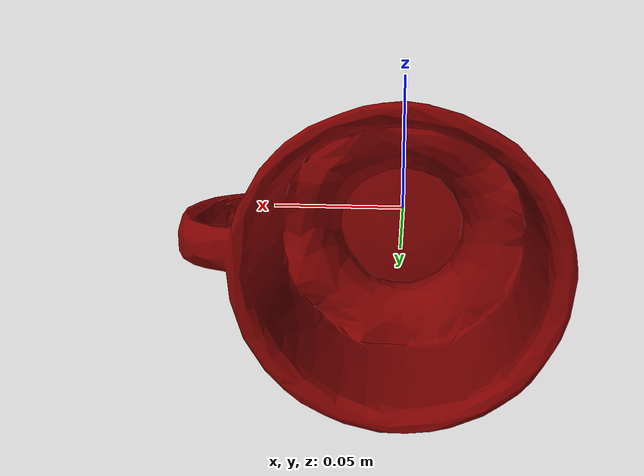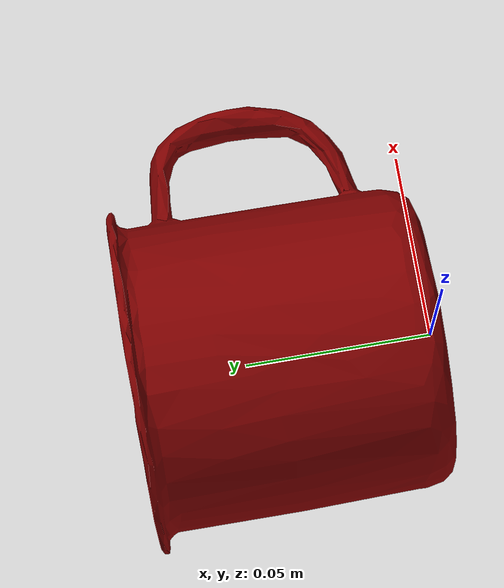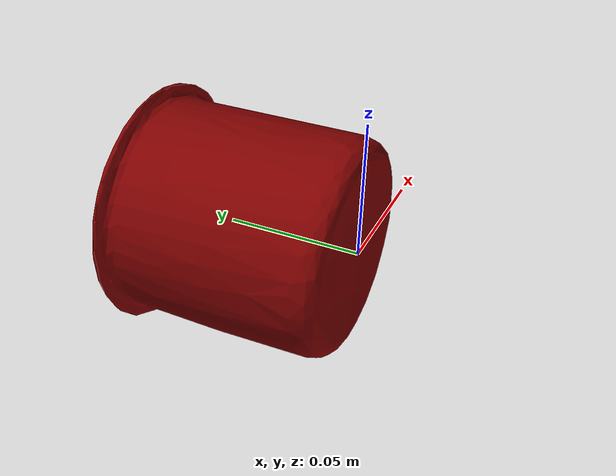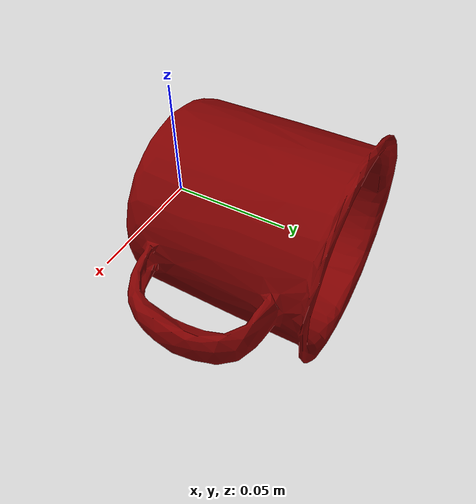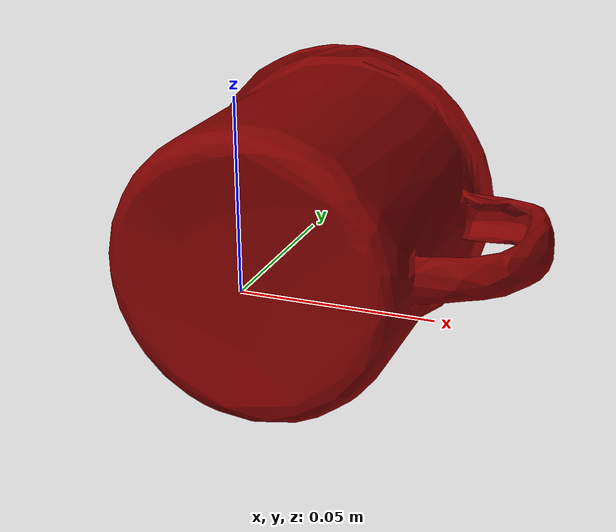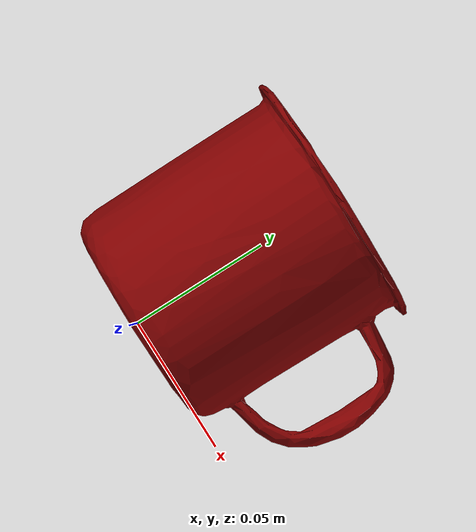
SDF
<?xml version="1.0"?>
<!--This file contains the SDF model of a Franka Panda hand.
It has been produced using gazebo sdf script from its urdf included
in the pyBullet examples. -->
<sdf version="1.6">
  <world name="default">
    <model name="mug">
      <link name="mug_base_link">
        <pose frame="">0 0 0 0 0 0</pose>
        <inertial>
          <pose frame="">0 0.04 0 0 0 0</pose>
          <mass>0.35</mass>
          <inertia>
            <ixx>0.000363854</ixx>
            <ixy>0</ixy>
            <ixz>0</ixz>
            <iyy>0.000074375</iyy>
            <iyz>0</iyz>
            <izz>0.000363854</izz>
          </inertia>
        </inertial>
        <visual name="mug_visual">
          <pose frame="">0 0 0 0 0 0</pose>
          <geometry>
            <mesh>
              <scale>1 1 1</scale>
              <uri>data/mug4.obj</uri>
            </mesh>
          </geometry>
          <material>
            <ambient>0.5 0 0 1</ambient>
            <diffuse>0.5 0.0 0.0 1.0</diffuse>
            <specular>0.3 0.3 0.3 1</specular>
            <emissive>0 0 0 0</emissive>
          </material>
        </visual>
        <collision name="mug_collision">
          <pose frame="">0 0 0 0 0 0</pose>
          <geometry>
            <mesh>
              <scale>1 1 1</scale>
              <uri>data/mug5_collision.obj</uri>
            </mesh>
          </geometry>
        </collision>
      </link>
    </model>
  </world>
</sdf>
